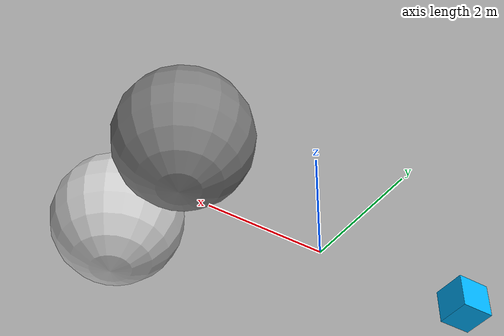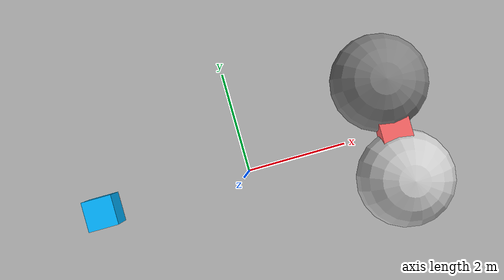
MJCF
<mujoco>
  <option gravity="0 0 -9.81" />
  <worldbody>
    <body name="object_1" pos="-3 0 0.2">
      <geom type="box" size="0.3 0.3 0.3" density="1" rgba="0 0.7 1 1" />
      <joint name="object_1_joint" type="slide" axis="1 0 0" />
    </body>
    <body name="object_2" pos="3 0 0.2">
      <geom type="box" size="0.3 0.3 0.3" density="1" rgba="1 0.4 0.4 1" />
      <joint name="object_2_joint" type="slide" axis="1 0 0" />
    </body>
  <body name="new_low_friction" pos="3.0 -1.0 0.0"><geom type="sphere" size="1.0" rgba="0.8 0.8 0.8 1" /></body><body name="new_high_friction" pos="3.0 1.0 0.0"><geom type="sphere" size="1.0" rgba="0.5 0.5 0.5 1" /></body></worldbody>
</mujoco>
